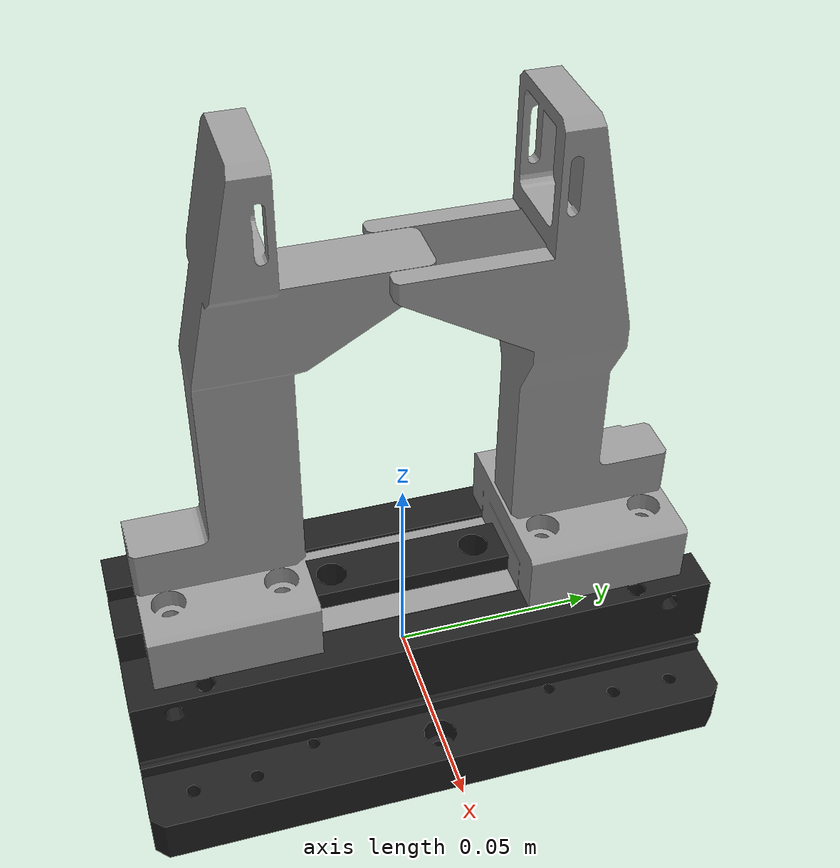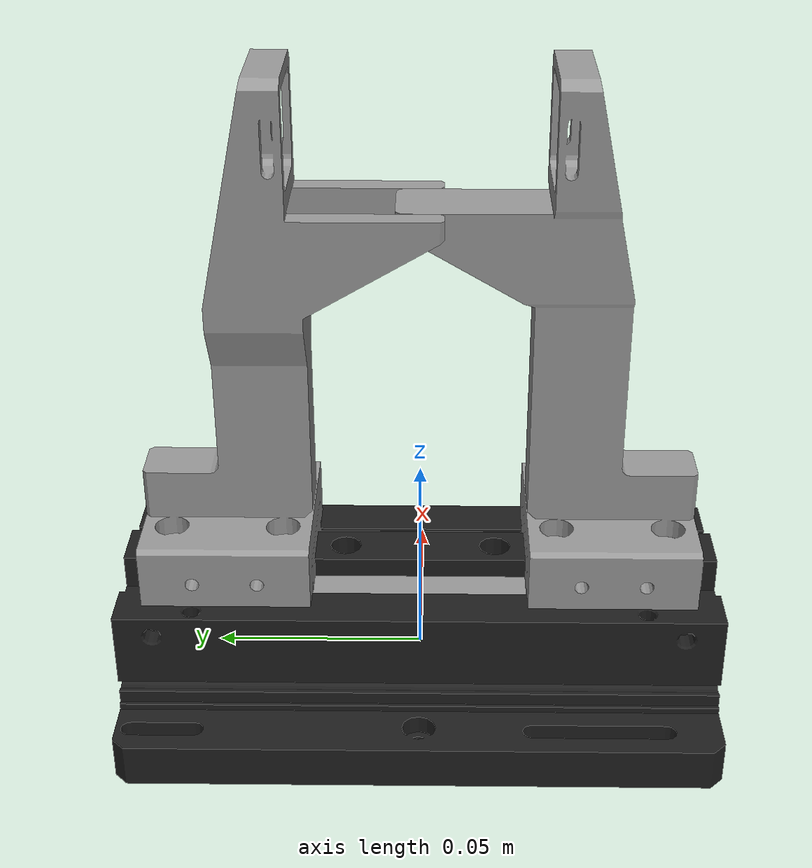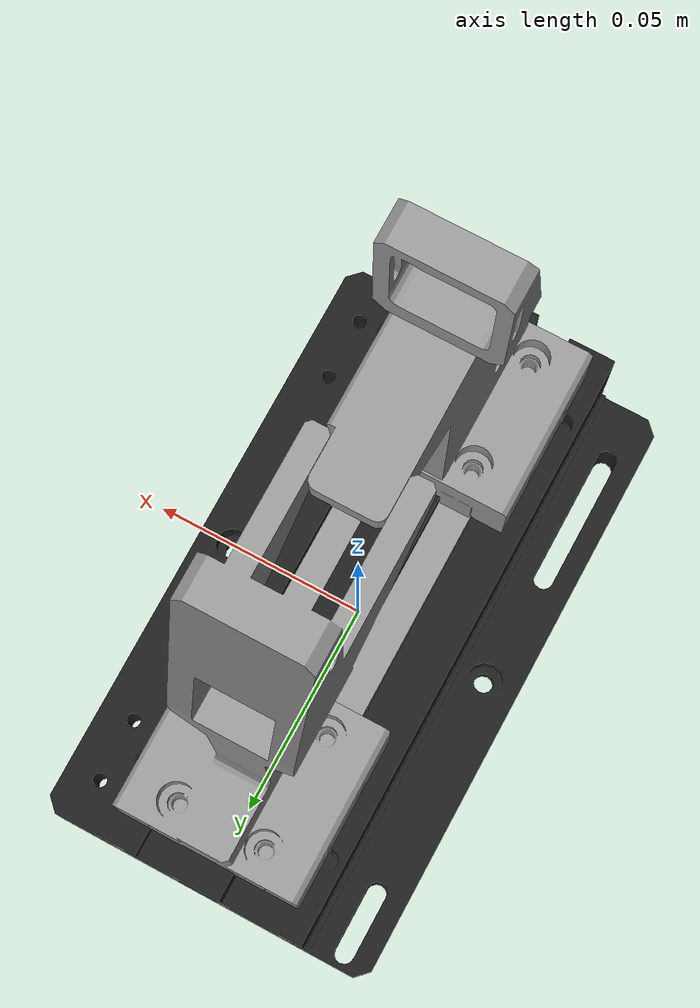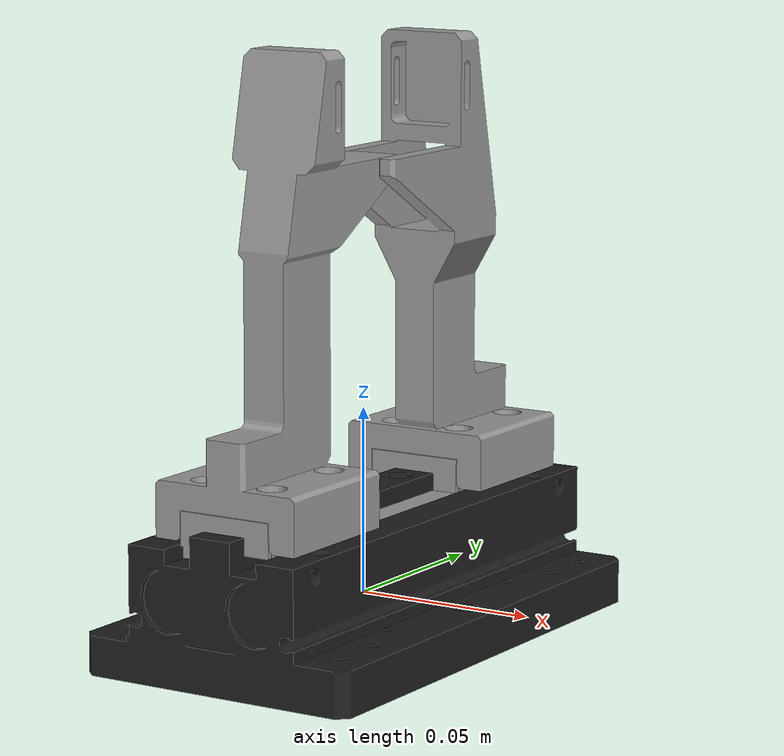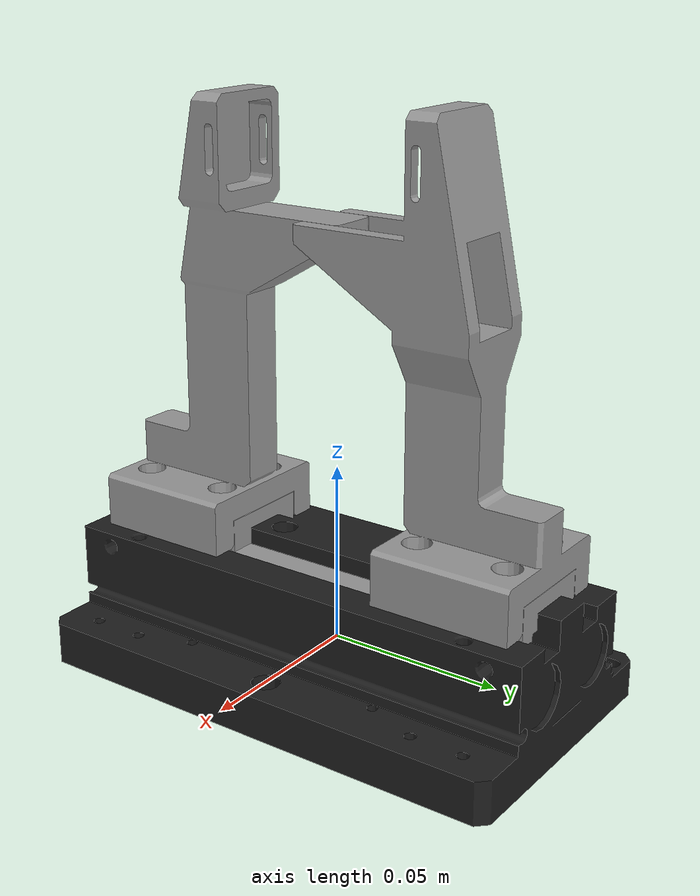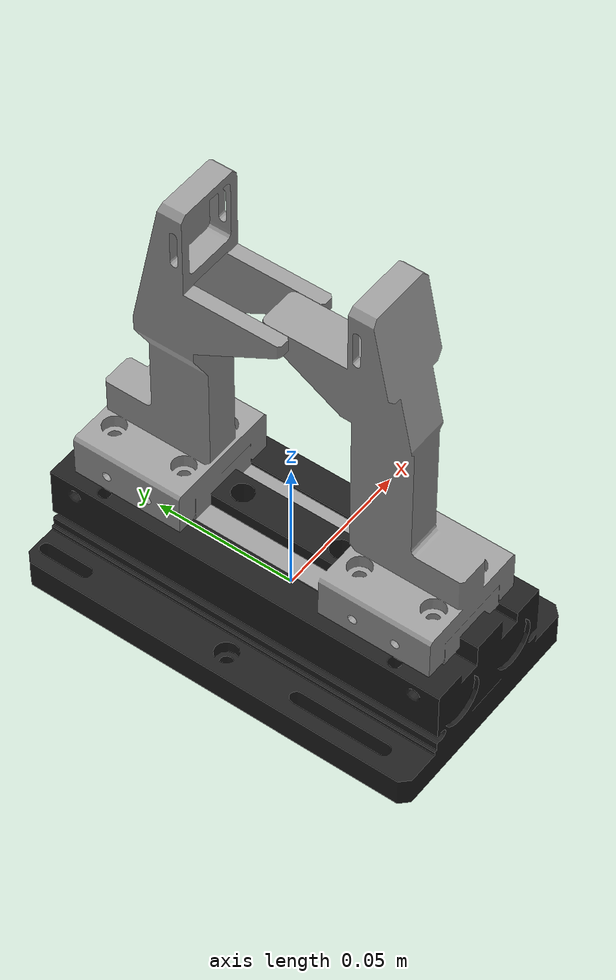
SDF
<sdf version='1.6'>
  <model name='catch_gripper'>
    <plugin name="gripper_plugin" filename="libgazebo_ros_catch_gripper.so">
    <ControlJointNames>
        catch_gripper::left_finger_joint,
        catch_gripper::right_finger_joint
      </ControlJointNames>
    </plugin>
    <link name='gripper_base'>
      <pose frame=''>0 0 0 0 -0 0</pose>
      <inertial>
        <pose frame=''>0.000721 9.8e-05 0.000307 0 -0 0</pose>
        <mass>0.471607</mass>
        <inertia>
          <ixx>0.000860606</ixx>
          <ixy>1.27043e-06</ixy>
          <ixz>7.56151e-07</ixz>
          <iyy>0.000242179</iyy>
          <iyz>3.32583e-07</iyz>
          <izz>0.00101242</izz>
        </inertia>
      </inertial>
      <collision name='gripper_base_collision'>
        <pose frame=''>0 0 0 0 -0 0</pose>
        <geometry>
          <mesh>
            <scale>1 1 1</scale>
            <uri>model://catch_gripper/meshes/gripper_base.STL</uri>
          </mesh>
        </geometry>
        <surface>
          <contact>
            <ode/>
          </contact>
          <friction>
            <ode/>
          </friction>
        </surface>
      </collision>
      <visual name='gripper_base_visual'>
        <pose frame=''>0 0 0 0 -0 0</pose>
        <geometry>
          <mesh>
            <scale>1 1 1</scale>
            <uri>model://catch_gripper/meshes/gripper_base.STL</uri>
          </mesh>
        </geometry>
        <material>
          <script>
            <name>Gazebo/Black</name>
            <uri>file://catch_gripper/materials/scripts/gazebo.material</uri>
          </script>
        </material>
      </visual>
      <gravity>1</gravity>
      <velocity_decay/>
    </link>
    <link name='left_finger'>
      <pose frame=''>0 -0.044885 0.04 0 -0 0</pose>
      <inertial>
        <pose frame=''>-0.000105 0.008232 0.030488 0 -0 0</pose>
        <mass>0.140873</mass>
        <inertia>
          <ixx>0.000208231</ixx>
          <ixy>4.76664e-07</ixy>
          <ixz>-7.69205e-07</ixz>
          <iyy>0.000192629</iyy>
          <iyz>-3.30016e-05</iyz>
          <izz>3.72131e-05</izz>
        </inertia>
      </inertial>
      <collision name='left_finger_collision'>
        <pose frame=''>0 0 0 0 -0 0</pose>
        <geometry>
          <mesh>
            <scale>1 1 1</scale>
            <uri>model://catch_gripper/meshes/left_finger.STL</uri>
          </mesh>
        </geometry>
        <surface>
          <contact>
            <ode/>
          </contact>
          <friction>
            <ode/>
          </friction>
        </surface>
      </collision>
      <collision name='left_finger_fixed_joint_lump__left_contact_collision_1'>
        <pose frame=''>0 0.018 0.092 0 -0 0</pose>
        <geometry>
          <box>
            <size>0.025 0.003 0.03</size>
          </box>
        </geometry>
        <surface>
          <contact>
            <ode>
              <kp>1e+06</kp>
              <kd>1</kd>
            </ode>
          </contact>
          <friction>
            <ode>
              <mu>10000</mu>
              <mu2>10000</mu2>
            </ode>
          </friction>
        </surface>
      </collision>
      <visual name='left_finger_visual'>
        <pose frame=''>0 0 0 0 -0 0</pose>
        <geometry>
          <mesh>
            <scale>1 1 1</scale>
            <uri>model://catch_gripper/meshes/left_finger.STL</uri>
          </mesh>
        </geometry>
        <material>
          <script>
            <name>Gazebo/Grey</name>
            <uri>file://catch_gripper/materials/scripts/gazebo.material</uri>
          </script>
        </material>
      </visual>
      <velocity_decay/>
      <gravity>1</gravity>
      <velocity_decay/>
    </link>
    <joint name='left_finger_joint' type='prismatic'>
      <child>left_finger</child>
      <parent>gripper_base</parent>
      <axis>
        <xyz>0 1 0</xyz>
        <limit>
          <lower>0</lower>
          <upper>0.025425</upper>
          <effort>12206.2</effort>
          <velocity>8.72665</velocity>
        </limit>
        <dynamics>
          <spring_reference>0</spring_reference>
          <spring_stiffness>0</spring_stiffness>
        </dynamics>
        <use_parent_model_frame>1</use_parent_model_frame>
      </axis>
    </joint>
    <link name='right_finger'>
      <pose frame=''>0 0.044885 0.04 0 -0 0</pose>
      <inertial>
        <pose frame=''>0.000197 -0.007215 0.028165 0 -0 0</pose>
        <mass>0.135519</mass>
        <inertia>
          <ixx>0.000189728</ixx>
          <ixy>4.05432e-07</ixy>
          <ixz>1.17915e-06</ixz>
          <iyy>0.000179898</iyy>
          <iyz>2.713e-05</iyz>
          <izz>3.58456e-05</izz>
        </inertia>
      </inertial>
      <collision name='right_finger_collision'>
        <pose frame=''>0 0 0 0 -0 0</pose>
        <geometry>
          <mesh>
            <scale>1 1 1</scale>
            <uri>model://catch_gripper/meshes/right_finger.STL</uri>
          </mesh>
        </geometry>
        <surface>
          <contact>
            <ode/>
          </contact>
          <friction>
            <ode/>
          </friction>
        </surface>
      </collision>
      <collision name='right_finger_fixed_joint_lump__right_contact_collision_1'>
        <pose frame=''>0 -0.018 0.092 0 -0 0</pose>
        <geometry>
          <box>
            <size>0.025 0.003 0.03</size>
          </box>
        </geometry>
        <surface>
          <contact>
            <ode>
              <kp>1e+06</kp>
              <kd>1</kd>
            </ode>
          </contact>
          <friction>
            <ode>
              <mu>10000</mu>
              <mu2>10000</mu2>
            </ode>
          </friction>
        </surface>
      </collision>
      <visual name='right_finger_visual'>
        <pose frame=''>0 0 0 0 -0 0</pose>
        <geometry>
          <mesh>
            <scale>1 1 1</scale>
            <uri>model://catch_gripper/meshes/right_finger.STL</uri>
          </mesh>
        </geometry>
        <material>
          <script>
            <name>Gazebo/Grey</name>
            <uri>file://catch_gripper/materials/scripts/gazebo.material</uri>
          </script>
        </material>
      </visual>
      <velocity_decay/>
      <gravity>1</gravity>
      <velocity_decay/>
    </link>
    <joint name='right_finger_joint' type='prismatic'>
      <child>right_finger</child>
      <parent>gripper_base</parent>
      <axis>
        <xyz>0 -1 0</xyz>
        <limit>
          <lower>0</lower>
          <upper>0.025425</upper>
          <effort>23945.2</effort>
          <velocity>8.72665</velocity>
        </limit>
        <dynamics>
          <spring_reference>0</spring_reference>
          <spring_stiffness>0</spring_stiffness>
        </dynamics>
        <use_parent_model_frame>1</use_parent_model_frame>
      </axis>
    </joint>
  </model>
</sdf>
